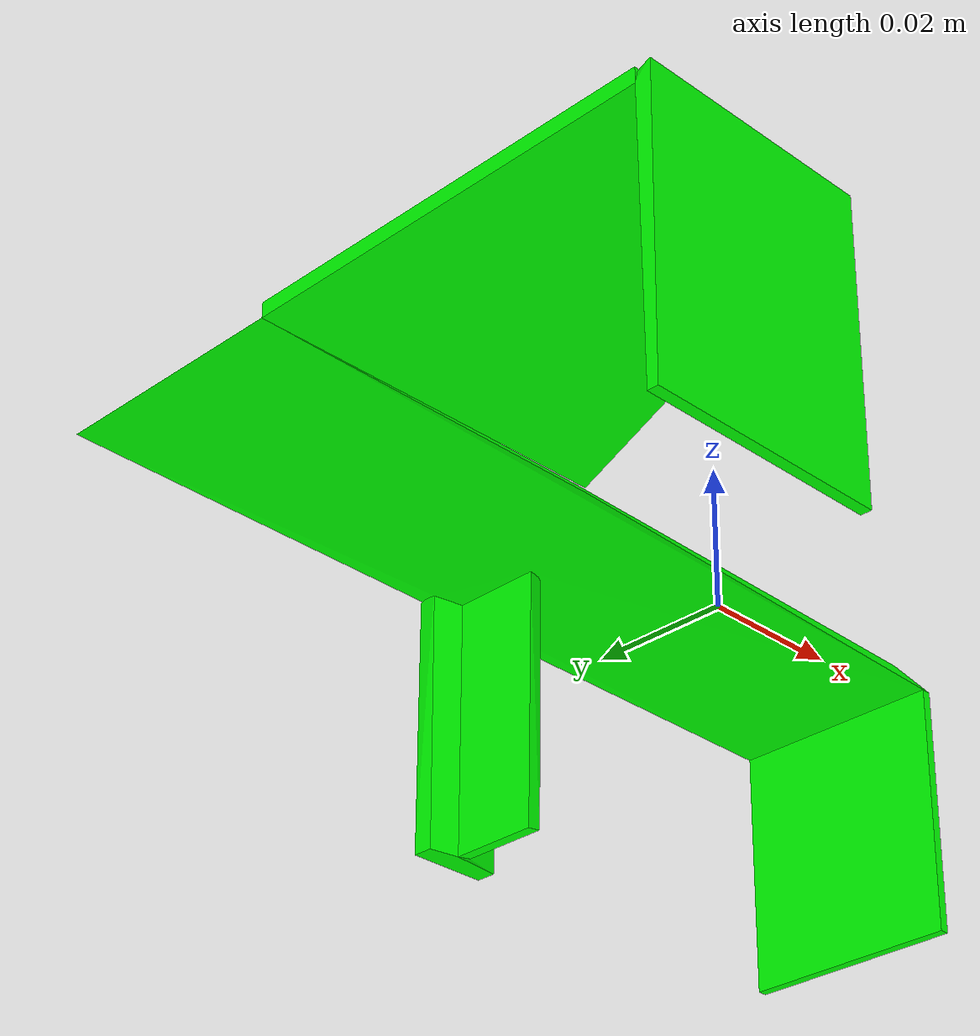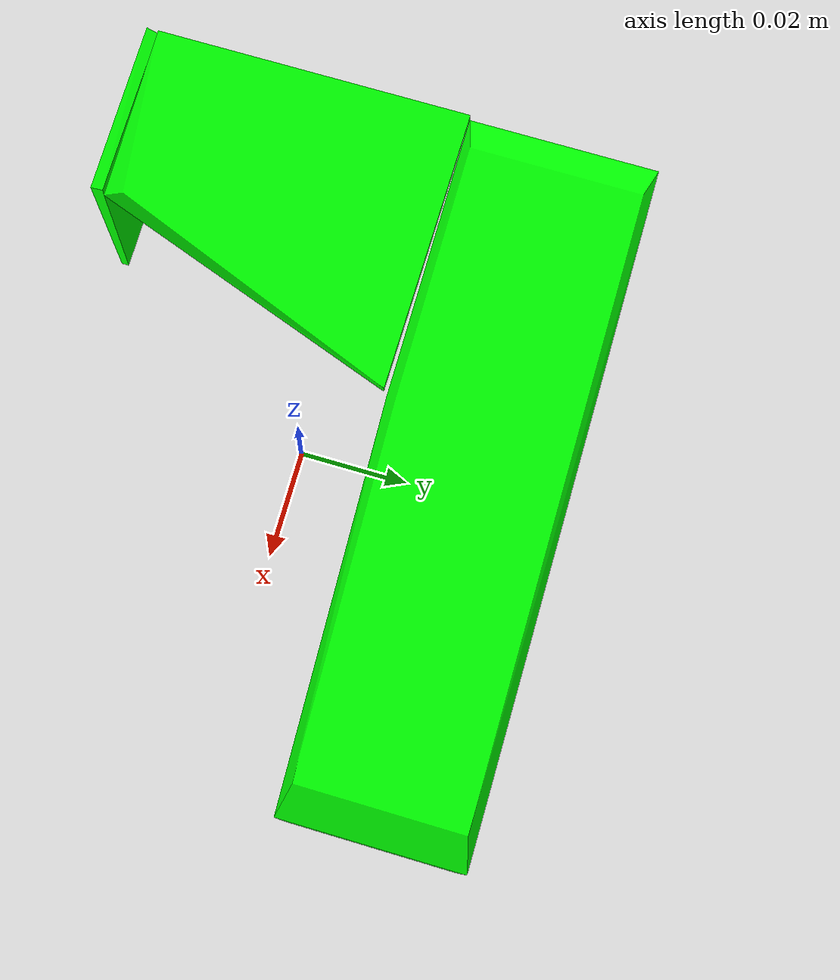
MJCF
<mujoco model="shapenetsem35">
  <asset>
    <mesh file="meshes/shapenetsem35/shapenetsem35_0.stl" name="shapenetsem35_0" scale="1 1 1"/>
    <mesh file="meshes/shapenetsem35/shapenetsem35_1.stl" name="shapenetsem35_1" scale="1 1 1"/>
    <mesh file="meshes/shapenetsem35/shapenetsem35_2.stl" name="shapenetsem35_2" scale="1 1 1"/>
    <mesh file="meshes/shapenetsem35/shapenetsem35_3.stl" name="shapenetsem35_3" scale="1 1 1"/>
    <mesh file="meshes/shapenetsem35/shapenetsem35_4.stl" name="shapenetsem35_4" scale="1 1 1"/>
    <mesh file="meshes/shapenetsem35/shapenetsem35_5.stl" name="shapenetsem35_5" scale="1 1 1"/>
  </asset>
  <worldbody>
    <body>
      <body name="collision">
        <geom pos="0 0 0" mesh="shapenetsem35_0" type="mesh" solimp="0.998 0.998 0.001" solref="0.001 1" density="100" friction="0.95 0.3 0.1" rgba="0 1 0 1" group="1" condim="4"/>
        <geom pos="0 0 0" mesh="shapenetsem35_1" type="mesh" solimp="0.998 0.998 0.001" solref="0.001 1" density="100" friction="0.95 0.3 0.1" rgba="0 1 0 1" group="1" condim="4"/>
        <geom pos="0 0 0" mesh="shapenetsem35_2" type="mesh" solimp="0.998 0.998 0.001" solref="0.001 1" density="100" friction="0.95 0.3 0.1" rgba="0 1 0 1" group="1" condim="4"/>
        <geom pos="0 0 0" mesh="shapenetsem35_3" type="mesh" solimp="0.998 0.998 0.001" solref="0.001 1" density="100" friction="0.95 0.3 0.1" rgba="0 1 0 1" group="1" condim="4"/>
        <geom pos="0 0 0" mesh="shapenetsem35_4" type="mesh" solimp="0.998 0.998 0.001" solref="0.001 1" density="100" friction="0.95 0.3 0.1" rgba="0 1 0 1" group="1" condim="4"/>
        <geom pos="0 0 0" mesh="shapenetsem35_5" type="mesh" solimp="0.998 0.998 0.001" solref="0.001 1" density="100" friction="0.95 0.3 0.1" rgba="0 1 0 1" group="1" condim="4"/>
      </body>
      <body name="visual">
        <geom pos="0 0 0" mesh="shapenetsem35_0" type="mesh" rgba="0 1 0 1" conaffinity="0" contype="0" group="0" mass="0.0001"/>
        <geom pos="0 0 0" mesh="shapenetsem35_1" type="mesh" rgba="0 1 0 1" conaffinity="0" contype="0" group="0" mass="0.0001"/>
        <geom pos="0 0 0" mesh="shapenetsem35_2" type="mesh" rgba="0 1 0 1" conaffinity="0" contype="0" group="0" mass="0.0001"/>
        <geom pos="0 0 0" mesh="shapenetsem35_3" type="mesh" rgba="0 1 0 1" conaffinity="0" contype="0" group="0" mass="0.0001"/>
        <geom pos="0 0 0" mesh="shapenetsem35_4" type="mesh" rgba="0 1 0 1" conaffinity="0" contype="0" group="0" mass="0.0001"/>
        <geom pos="0 0 0" mesh="shapenetsem35_5" type="mesh" rgba="0 1 0 1" conaffinity="0" contype="0" group="0" mass="0.0001"/>
      </body>
      <site rgba="0 0 0 0" size="0.005" pos="0 0 -0.06" name="bottom_site"/>
      <site rgba="0 0 0 0" size="0.005" pos="0 0 0.04" name="top_site"/>
      <site rgba="0 0 0 0" size="0.005" pos="0.025 0.025 0" name="horizontal_radius_site"/>
    </body>
  </worldbody>
</mujoco>
